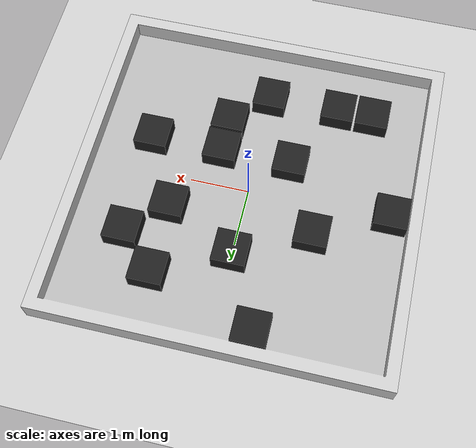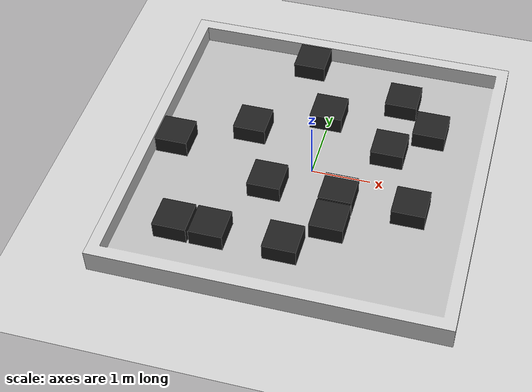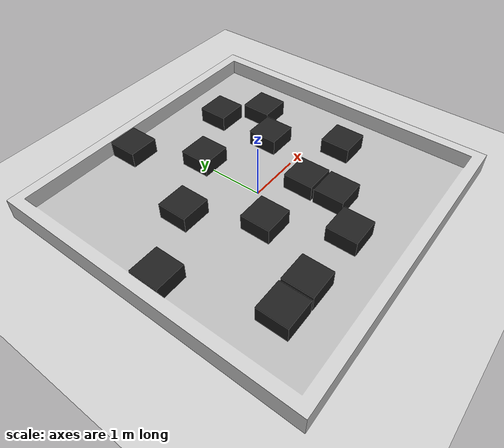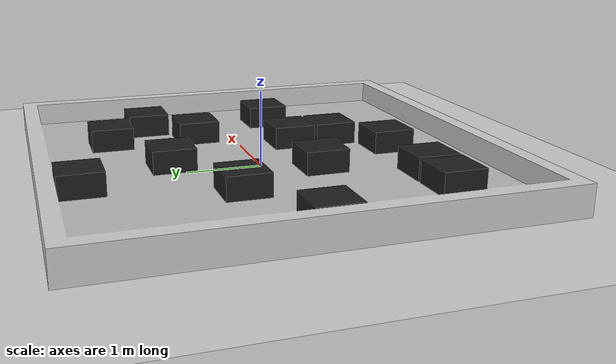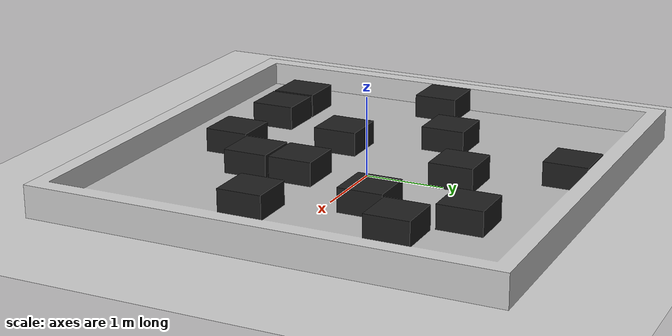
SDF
<?xml version="1.0" ?>

<sdf version="1.6">
  <world name="default">

    <gravity>0 0 -9.80664</gravity>

    <include>
      <uri>model://sun</uri>
    </include>

    <include>
      <uri>model://ground_plane</uri>
    </include>

    <include>
      <name>box1</name>
      <uri>model://imitation_learning_block</uri>
      <static>false</static>
      <pose>-0.6 2.4 0.1 0 0 0</pose>
    </include>

    <include>
      <name>box2</name>
      <uri>model://imitation_learning_block</uri>
      <static>false</static>
      <pose>0.0 1.2 0.1 0 0 0</pose>
    </include>

    <include>
      <name>box3</name>
      <uri>model://imitation_learning_block</uri>
      <static>false</static>
      <pose>1.2 1.8 0.1 0 0 0</pose>
    </include>

    <include>
      <name>box4</name>
      <uri>model://imitation_learning_block</uri>
      <static>false</static>
      <pose>1.8 1.2 0.1 0 0 0</pose>
    </include>

    <include>
      <name>box5</name>
      <uri>model://imitation_learning_block</uri>
      <static>false</static>
      <pose>1.2 0.6 0.1 0 0 0</pose>
    </include>

    <include>
      <name>box6</name>
      <uri>model://imitation_learning_block</uri>
      <static>false</static>
      <pose>1.8 -0.6 0.1 0 0 0</pose>
    </include>

    <include>
      <name>box7</name>
      <uri>model://imitation_learning_block</uri>
      <static>false</static>
      <pose>-0.6 -0.6 0.1 0 0 0</pose>
    </include>

    <include>
      <name>box8</name>
      <uri>model://imitation_learning_block</uri>
      <static>false</static>
      <pose>0.6 -0.6 0.1 0 0 0</pose>
    </include>

    <include>
      <name>box9</name>
      <uri>model://imitation_learning_block</uri>
      <static>false</static>
      <pose>-1.2 0.6 0.1 0 0 0</pose>
    </include>

    <include>
      <name>box10</name>
      <uri>model://imitation_learning_block</uri>
      <static>false</static>
      <pose>-2.4 0.0 0.1 0 0 0</pose>
    </include>

    <include>
      <name>box11</name>
      <uri>model://imitation_learning_block</uri>
      <static>false</static>
      <pose>-1.8 -1.8 0.1 0 0 0</pose>
    </include>

    <include>
      <name>box12</name>
      <uri>model://imitation_learning_block</uri>
      <static>false</static>
      <pose>-1.2 -1.8 0.1 0 0 0</pose>
    </include>

    <include>
      <name>box13</name>
      <uri>model://imitation_learning_block</uri>
      <static>false</static>
      <pose>0.0 -1.8 0.1 0 0 0</pose>
    </include>

    <include>
      <name>box14</name>
      <uri>model://imitation_learning_block</uri>
      <static>false</static>
      <pose>0.6 -1.2 0.1 0 0 0</pose>
    </include>

    <include>
      <name>imitation_learning_stage</name>
      <uri>model://imitation_learning_stage</uri>
      <static>true</static>
      <pose>0 0 0 0 0 0</pose>
    </include>

    <plugin name="gazebo_ros_state" filename="libgazebo_ros_state.so">
      <ros>
        <namespace>/gazebo</namespace>
      </ros>
      <update_rate>50</update_rate>
    </plugin>

    <camera name='user_camera'>
      <pose>-0.068961 3.37586 8.58288 0 1.2058 -1.5718</pose>
      <view_controller>orbit</view_controller>
      <projection_type>perspective</projection_type>
    </camera>
  </world>
</sdf>

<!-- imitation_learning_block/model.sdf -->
<sdf version="1.6">
  <model name="imitation_learning_block">
    <link name="link">
    	<inertial>
		    <origin xyz="0 0 0"/>
		    <mass value="100.0"/>
		    <inertia ixx="0.16" ixy="0" ixz="0" iyy="0.16" iyz="0" izz="0.32" />
	    </inertial>
      <collision name="collision">
        <geometry>
          <mesh>
            <scale>0.93 0.93 1</scale>
            <uri>model://imitation_learning_block/meshes/imitation_learning_block.stl</uri>
          </mesh>
          <surface>
            <friction>
              <ode>
                <mu>1.2</mu>
                <mu2>1.2</mu2>
              </ode>
            </friction>
          </surface>
        </geometry>
      </collision>
      <visual name="visual">
        <geometry>
          <mesh>
            <scale>0.93 0.93 1</scale>
            <uri>model://imitation_learning_block/meshes/imitation_learning_block.dae</uri>
          </mesh>
        </geometry>
      </visual>
    </link>
  </model>
</sdf>

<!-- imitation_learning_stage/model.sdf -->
<sdf version="1.6">
  <model name="imitation_learning_stage">
    <static>true</static>
    <link name="link">
      <collision name="collision">
        <geometry>
          <mesh>
            <scale>1 1 1</scale>
            <uri>model://imitation_learning_stage/meshes/imitation_learning_stage.stl</uri>
          </mesh>
          <surface>
            <friction>
              <ode>
                <mu>1.2</mu>
                <mu2>1.2</mu2>
              </ode>
            </friction>
          </surface>
        </geometry>
      </collision>
      <visual name="visual">
        <geometry>
          <mesh>
            <scale>1 1 1</scale>
            <uri>model://imitation_learning_stage/meshes/imitation_learning_stage.dae</uri>
          </mesh>
        </geometry>
      </visual>
    </link>
  </model>
</sdf>
